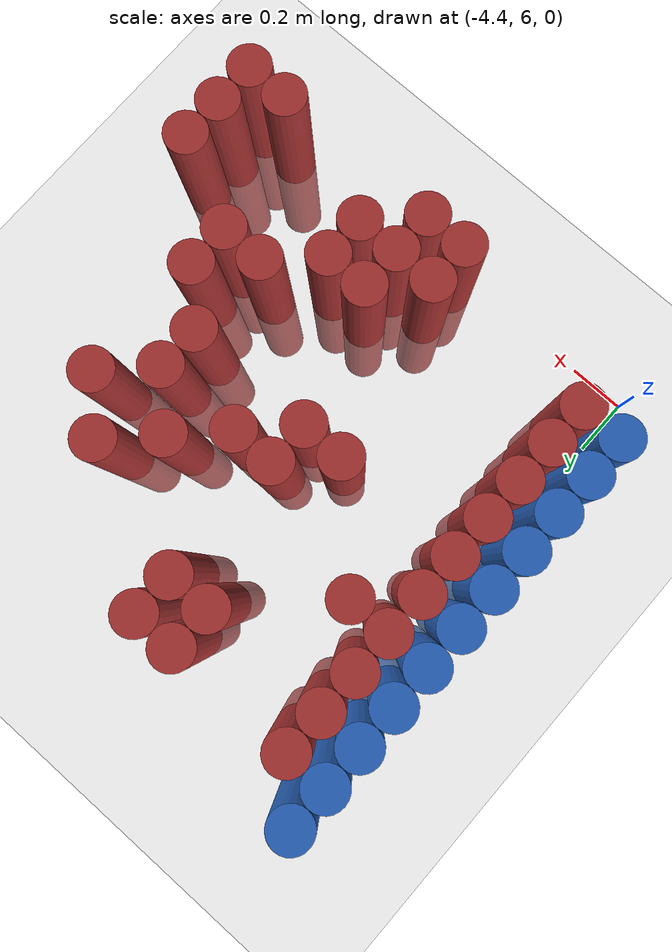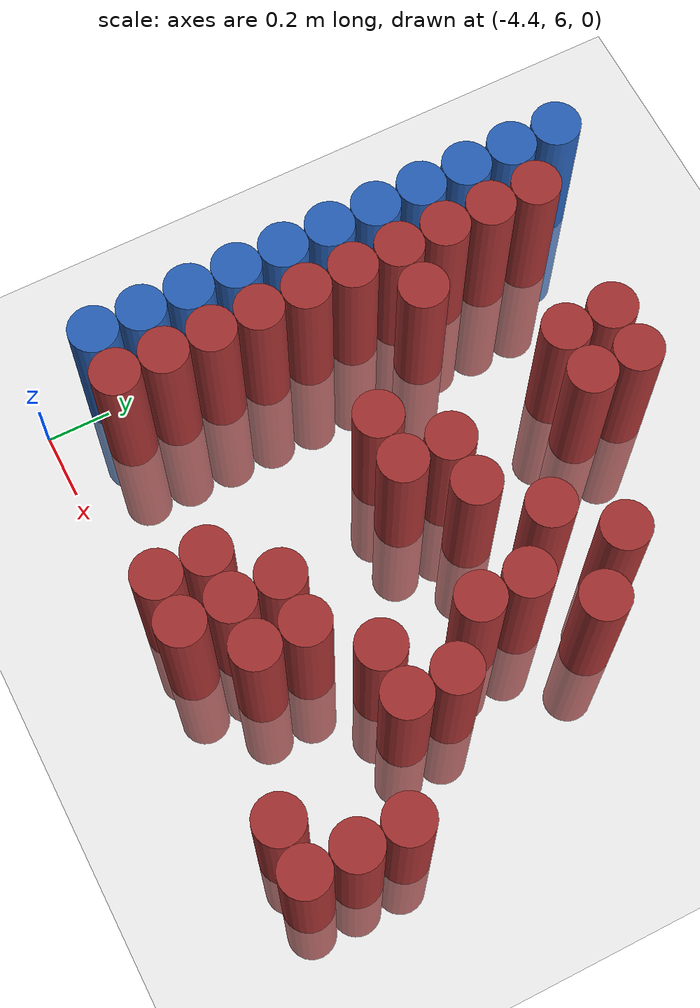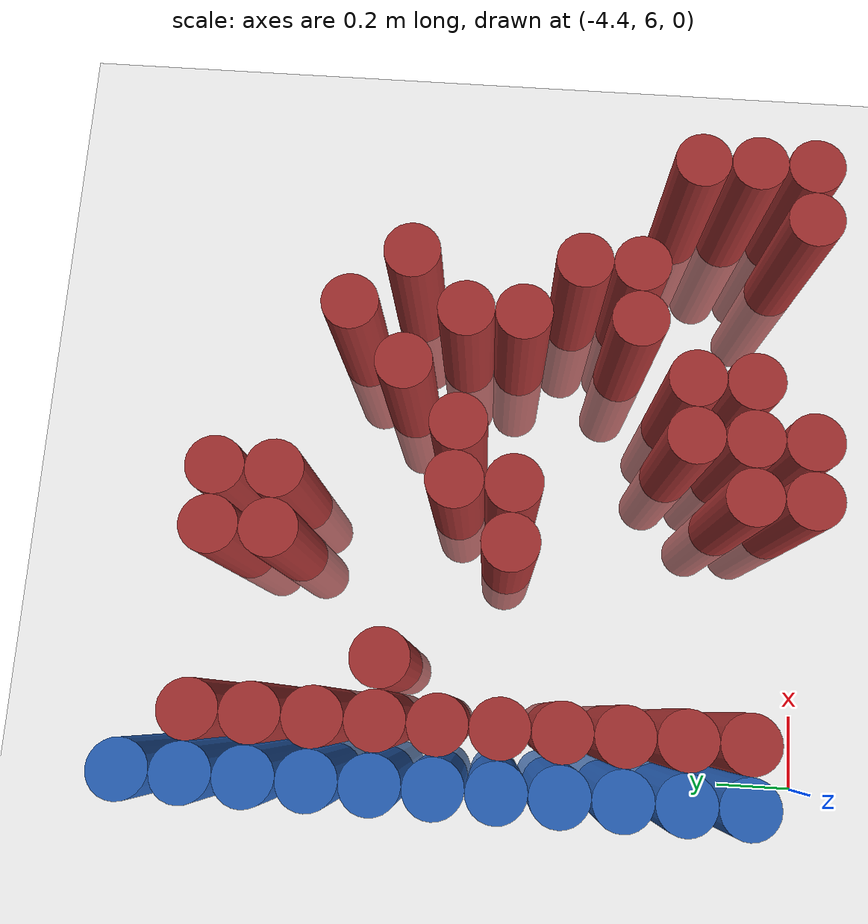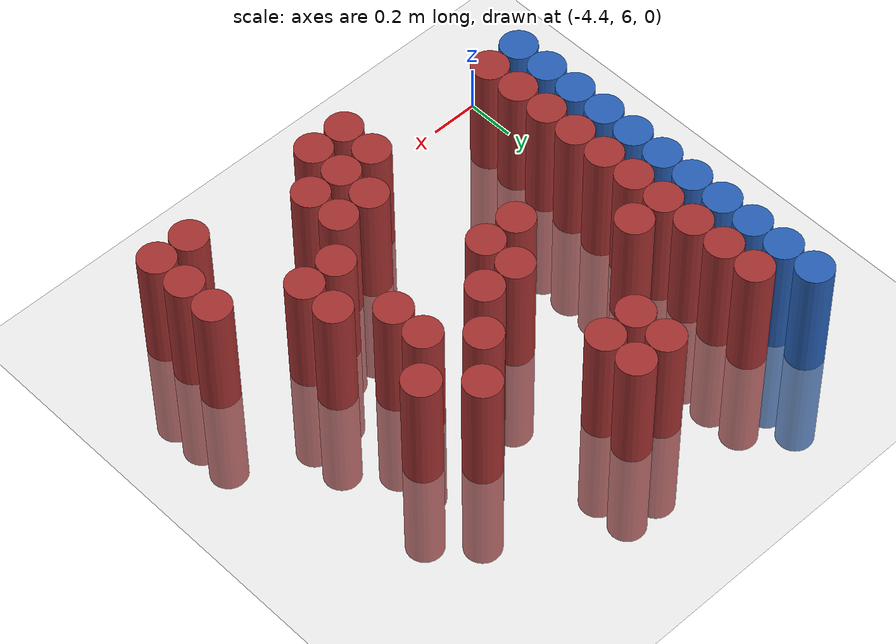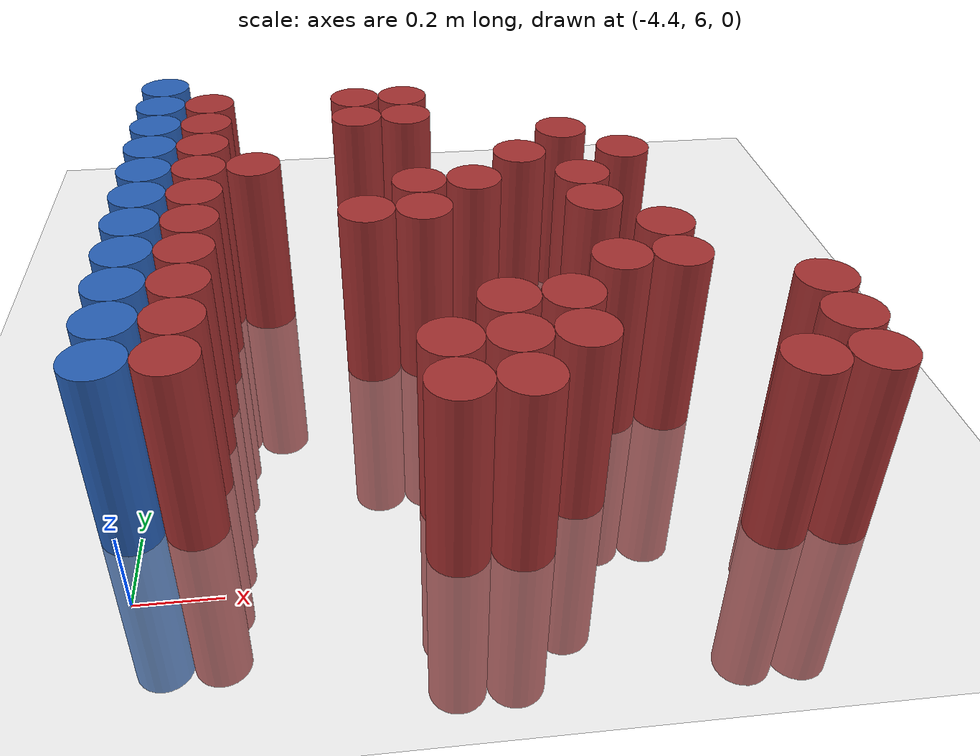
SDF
<sdf version="1.6">
 <world name="default">
  <model name="ground_plane">
   <static>1</static>
   <link name="link">
    <collision name="collision">
     <geometry><plane><normal>0 0 1</normal><size>100 100</size></plane></geometry>
     <surface><friction><ode><mu>100</mu><mu2>50</mu2></ode></friction></surface>
    </collision>
    <visual name="visual">
     <cast_shadows>0</cast_shadows>
     <geometry><plane><normal>0 0 1</normal><size>100 100</size></plane></geometry>
     <material>
      <script><uri>file://media/materials/scripts/gazebo.material</uri><name>Gazebo/Grey</name></script>
     </material>
    </visual>
   </link>
  </model>
  <model name="unit_cylinder_103">
   <static>1</static>
   <pose>-4.425000 6.225000 0.000000 0.000000 0.000000 0.000000</pose>
   <link name="link">
    <inertial>
     <mass>1</mass>
     <inertia><ixx>0.145833</ixx><ixy>0</ixy><ixz>0</ixz><iyy>0.145833</iyy><iyz>0</iyz><izz>0.125</izz></inertia>
    </inertial>
    <collision name="collision">
     <geometry><cylinder><radius>0.075000</radius><length>1</length></cylinder></geometry>
    </collision>
    <visual name="visual">
     <geometry><cylinder><radius>0.075000</radius><length>1</length></cylinder></geometry>
     <material>
      <ambient>0.152000 0.379000 0.720000 1</ambient>
      <diffuse>0.152000 0.379000 0.720000 1</diffuse>
     </material>
     <material>
      <script><name>Gazebo/Grey</name><uri>file://media/materials/scripts/gazebo.material</uri></script>
     </material>
    </visual>
   </link>
  </model>
  <model name="unit_cylinder_104">
   <static>1</static>
   <pose>-4.425000 6.375000 0.000000 0.000000 0.000000 0.000000</pose>
   <link name="link">
    <inertial>
     <mass>1</mass>
     <inertia><ixx>0.145833</ixx><ixy>0</ixy><ixz>0</ixz><iyy>0.145833</iyy><iyz>0</iyz><izz>0.125</izz></inertia>
    </inertial>
    <collision name="collision">
     <geometry><cylinder><radius>0.075000</radius><length>1</length></cylinder></geometry>
    </collision>
    <visual name="visual">
     <geometry><cylinder><radius>0.075000</radius><length>1</length></cylinder></geometry>
     <material>
      <ambient>0.152000 0.379000 0.720000 1</ambient>
      <diffuse>0.152000 0.379000 0.720000 1</diffuse>
     </material>
     <material>
      <script><name>Gazebo/Grey</name><uri>file://media/materials/scripts/gazebo.material</uri></script>
     </material>
    </visual>
   </link>
  </model>
  <model name="unit_cylinder_105">
   <static>1</static>
   <pose>-4.425000 6.525000 0.000000 0.000000 0.000000 0.000000</pose>
   <link name="link">
    <inertial>
     <mass>1</mass>
     <inertia><ixx>0.145833</ixx><ixy>0</ixy><ixz>0</ixz><iyy>0.145833</iyy><iyz>0</iyz><izz>0.125</izz></inertia>
    </inertial>
    <collision name="collision">
     <geometry><cylinder><radius>0.075000</radius><length>1</length></cylinder></geometry>
    </collision>
    <visual name="visual">
     <geometry><cylinder><radius>0.075000</radius><length>1</length></cylinder></geometry>
     <material>
      <ambient>0.152000 0.379000 0.720000 1</ambient>
      <diffuse>0.152000 0.379000 0.720000 1</diffuse>
     </material>
     <material>
      <script><name>Gazebo/Grey</name><uri>file://media/materials/scripts/gazebo.material</uri></script>
     </material>
    </visual>
   </link>
  </model>
  <model name="unit_cylinder_106">
   <static>1</static>
   <pose>-4.425000 6.675000 0.000000 0.000000 0.000000 0.000000</pose>
   <link name="link">
    <inertial>
     <mass>1</mass>
     <inertia><ixx>0.145833</ixx><ixy>0</ixy><ixz>0</ixz><iyy>0.145833</iyy><iyz>0</iyz><izz>0.125</izz></inertia>
    </inertial>
    <collision name="collision">
     <geometry><cylinder><radius>0.075000</radius><length>1</length></cylinder></geometry>
    </collision>
    <visual name="visual">
     <geometry><cylinder><radius>0.075000</radius><length>1</length></cylinder></geometry>
     <material>
      <ambient>0.152000 0.379000 0.720000 1</ambient>
      <diffuse>0.152000 0.379000 0.720000 1</diffuse>
     </material>
     <material>
      <script><name>Gazebo/Grey</name><uri>file://media/materials/scripts/gazebo.material</uri></script>
     </material>
    </visual>
   </link>
  </model>
  <model name="unit_cylinder_107">
   <static>1</static>
   <pose>-4.425000 6.825000 0.000000 0.000000 0.000000 0.000000</pose>
   <link name="link">
    <inertial>
     <mass>1</mass>
     <inertia><ixx>0.145833</ixx><ixy>0</ixy><ixz>0</ixz><iyy>0.145833</iyy><iyz>0</iyz><izz>0.125</izz></inertia>
    </inertial>
    <collision name="collision">
     <geometry><cylinder><radius>0.075000</radius><length>1</length></cylinder></geometry>
    </collision>
    <visual name="visual">
     <geometry><cylinder><radius>0.075000</radius><length>1</length></cylinder></geometry>
     <material>
      <ambient>0.152000 0.379000 0.720000 1</ambient>
      <diffuse>0.152000 0.379000 0.720000 1</diffuse>
     </material>
     <material>
      <script><name>Gazebo/Grey</name><uri>file://media/materials/scripts/gazebo.material</uri></script>
     </material>
    </visual>
   </link>
  </model>
  <model name="unit_cylinder_108">
   <static>1</static>
   <pose>-4.425000 6.975000 0.000000 0.000000 0.000000 0.000000</pose>
   <link name="link">
    <inertial>
     <mass>1</mass>
     <inertia><ixx>0.145833</ixx><ixy>0</ixy><ixz>0</ixz><iyy>0.145833</iyy><iyz>0</iyz><izz>0.125</izz></inertia>
    </inertial>
    <collision name="collision">
     <geometry><cylinder><radius>0.075000</radius><length>1</length></cylinder></geometry>
    </collision>
    <visual name="visual">
     <geometry><cylinder><radius>0.075000</radius><length>1</length></cylinder></geometry>
     <material>
      <ambient>0.152000 0.379000 0.720000 1</ambient>
      <diffuse>0.152000 0.379000 0.720000 1</diffuse>
     </material>
     <material>
      <script><name>Gazebo/Grey</name><uri>file://media/materials/scripts/gazebo.material</uri></script>
     </material>
    </visual>
   </link>
  </model>
  <model name="unit_cylinder_109">
   <static>1</static>
   <pose>-4.425000 7.125000 0.000000 0.000000 0.000000 0.000000</pose>
   <link name="link">
    <inertial>
     <mass>1</mass>
     <inertia><ixx>0.145833</ixx><ixy>0</ixy><ixz>0</ixz><iyy>0.145833</iyy><iyz>0</iyz><izz>0.125</izz></inertia>
    </inertial>
    <collision name="collision">
     <geometry><cylinder><radius>0.075000</radius><length>1</length></cylinder></geometry>
    </collision>
    <visual name="visual">
     <geometry><cylinder><radius>0.075000</radius><length>1</length></cylinder></geometry>
     <material>
      <ambient>0.152000 0.379000 0.720000 1</ambient>
      <diffuse>0.152000 0.379000 0.720000 1</diffuse>
     </material>
     <material>
      <script><name>Gazebo/Grey</name><uri>file://media/materials/scripts/gazebo.material</uri></script>
     </material>
    </visual>
   </link>
  </model>
  <model name="unit_cylinder_110">
   <static>1</static>
   <pose>-4.425000 7.275000 0.000000 0.000000 0.000000 0.000000</pose>
   <link name="link">
    <inertial>
     <mass>1</mass>
     <inertia><ixx>0.145833</ixx><ixy>0</ixy><ixz>0</ixz><iyy>0.145833</iyy><iyz>0</iyz><izz>0.125</izz></inertia>
    </inertial>
    <collision name="collision">
     <geometry><cylinder><radius>0.075000</radius><length>1</length></cylinder></geometry>
    </collision>
    <visual name="visual">
     <geometry><cylinder><radius>0.075000</radius><length>1</length></cylinder></geometry>
     <material>
      <ambient>0.152000 0.379000 0.720000 1</ambient>
      <diffuse>0.152000 0.379000 0.720000 1</diffuse>
     </material>
     <material>
      <script><name>Gazebo/Grey</name><uri>file://media/materials/scripts/gazebo.material</uri></script>
     </material>
    </visual>
   </link>
  </model>
  <model name="unit_cylinder_111">
   <static>1</static>
   <pose>-4.425000 7.425000 0.000000 0.000000 0.000000 0.000000</pose>
   <link name="link">
    <inertial>
     <mass>1</mass>
     <inertia><ixx>0.145833</ixx><ixy>0</ixy><ixz>0</ixz><iyy>0.145833</iyy><iyz>0</iyz><izz>0.125</izz></inertia>
    </inertial>
    <collision name="collision">
     <geometry><cylinder><radius>0.075000</radius><length>1</length></cylinder></geometry>
    </collision>
    <visual name="visual">
     <geometry><cylinder><radius>0.075000</radius><length>1</length></cylinder></geometry>
     <material>
      <ambient>0.152000 0.379000 0.720000 1</ambient>
      <diffuse>0.152000 0.379000 0.720000 1</diffuse>
     </material>
     <material>
      <script><name>Gazebo/Grey</name><uri>file://media/materials/scripts/gazebo.material</uri></script>
     </material>
    </visual>
   </link>
  </model>
  <model name="unit_cylinder_112">
   <static>1</static>
   <pose>-4.425000 7.575000 0.000000 0.000000 0.000000 0.000000</pose>
   <link name="link">
    <inertial>
     <mass>1</mass>
     <inertia><ixx>0.145833</ixx><ixy>0</ixy><ixz>0</ixz><iyy>0.145833</iyy><iyz>0</iyz><izz>0.125</izz></inertia>
    </inertial>
    <collision name="collision">
     <geometry><cylinder><radius>0.075000</radius><length>1</length></cylinder></geometry>
    </collision>
    <visual name="visual">
     <geometry><cylinder><radius>0.075000</radius><length>1</length></cylinder></geometry>
     <material>
      <ambient>0.152000 0.379000 0.720000 1</ambient>
      <diffuse>0.152000 0.379000 0.720000 1</diffuse>
     </material>
     <material>
      <script><name>Gazebo/Grey</name><uri>file://media/materials/scripts/gazebo.material</uri></script>
     </material>
    </visual>
   </link>
  </model>
  <model name="unit_cylinder_113">
   <static>1</static>
   <pose>-4.425000 7.725000 0.000000 0.000000 0.000000 0.000000</pose>
   <link name="link">
    <inertial>
     <mass>1</mass>
     <inertia><ixx>0.145833</ixx><ixy>0</ixy><ixz>0</ixz><iyy>0.145833</iyy><iyz>0</iyz><izz>0.125</izz></inertia>
    </inertial>
    <collision name="collision">
     <geometry><cylinder><radius>0.075000</radius><length>1</length></cylinder></geometry>
    </collision>
    <visual name="visual">
     <geometry><cylinder><radius>0.075000</radius><length>1</length></cylinder></geometry>
     <material>
      <ambient>0.152000 0.379000 0.720000 1</ambient>
      <diffuse>0.152000 0.379000 0.720000 1</diffuse>
     </material>
     <material>
      <script><name>Gazebo/Grey</name><uri>file://media/materials/scripts/gazebo.material</uri></script>
     </material>
    </visual>
   </link>
  </model>
  <model name="unit_cylinder_130">
   <static>1</static>
   <pose>-4.275000 6.225000 0.000000 0.000000 0.000000 0.000000</pose>
   <link name="link">
    <inertial>
     <mass>1</mass>
     <inertia><ixx>0.145833</ixx><ixy>0</ixy><ixz>0</ixz><iyy>0.145833</iyy><iyz>0</iyz><izz>0.125</izz></inertia>
    </inertial>
    <collision name="collision">
     <geometry><cylinder><radius>0.075000</radius><length>1</length></cylinder></geometry>
    </collision>
    <visual name="visual">
     <geometry><cylinder><radius>0.075000</radius><length>1</length></cylinder></geometry>
     <material>
      <ambient>0.648000 0.192000 0.192000 1</ambient>
      <diffuse>0.648000 0.192000 0.192000 1</diffuse>
     </material>
     <material>
      <script><name>Gazebo/Grey</name><uri>file://media/materials/scripts/gazebo.material</uri></script>
     </material>
    </visual>
   </link>
  </model>
  <model name="unit_cylinder_131">
   <static>1</static>
   <pose>-4.275000 6.375000 0.000000 0.000000 0.000000 0.000000</pose>
   <link name="link">
    <inertial>
     <mass>1</mass>
     <inertia><ixx>0.145833</ixx><ixy>0</ixy><ixz>0</ixz><iyy>0.145833</iyy><iyz>0</iyz><izz>0.125</izz></inertia>
    </inertial>
    <collision name="collision">
     <geometry><cylinder><radius>0.075000</radius><length>1</length></cylinder></geometry>
    </collision>
    <visual name="visual">
     <geometry><cylinder><radius>0.075000</radius><length>1</length></cylinder></geometry>
     <material>
      <ambient>0.648000 0.192000 0.192000 1</ambient>
      <diffuse>0.648000 0.192000 0.192000 1</diffuse>
     </material>
     <material>
      <script><name>Gazebo/Grey</name><uri>file://media/materials/scripts/gazebo.material</uri></script>
     </material>
    </visual>
   </link>
  </model>
  <model name="unit_cylinder_132">
   <static>1</static>
   <pose>-4.275000 6.525000 0.000000 0.000000 0.000000 0.000000</pose>
   <link name="link">
    <inertial>
     <mass>1</mass>
     <inertia><ixx>0.145833</ixx><ixy>0</ixy><ixz>0</ixz><iyy>0.145833</iyy><iyz>0</iyz><izz>0.125</izz></inertia>
    </inertial>
    <collision name="collision">
     <geometry><cylinder><radius>0.075000</radius><length>1</length></cylinder></geometry>
    </collision>
    <visual name="visual">
     <geometry><cylinder><radius>0.075000</radius><length>1</length></cylinder></geometry>
     <material>
      <ambient>0.648000 0.192000 0.192000 1</ambient>
      <diffuse>0.648000 0.192000 0.192000 1</diffuse>
     </material>
     <material>
      <script><name>Gazebo/Grey</name><uri>file://media/materials/scripts/gazebo.material</uri></script>
     </material>
    </visual>
   </link>
  </model>
  <model name="unit_cylinder_133">
   <static>1</static>
   <pose>-4.275000 6.675000 0.000000 0.000000 0.000000 0.000000</pose>
   <link name="link">
    <inertial>
     <mass>1</mass>
     <inertia><ixx>0.145833</ixx><ixy>0</ixy><ixz>0</ixz><iyy>0.145833</iyy><iyz>0</iyz><izz>0.125</izz></inertia>
    </inertial>
    <collision name="collision">
     <geometry><cylinder><radius>0.075000</radius><length>1</length></cylinder></geometry>
    </collision>
    <visual name="visual">
     <geometry><cylinder><radius>0.075000</radius><length>1</length></cylinder></geometry>
     <material>
      <ambient>0.648000 0.192000 0.192000 1</ambient>
      <diffuse>0.648000 0.192000 0.192000 1</diffuse>
     </material>
     <material>
      <script><name>Gazebo/Grey</name><uri>file://media/materials/scripts/gazebo.material</uri></script>
     </material>
    </visual>
   </link>
  </model>
  <model name="unit_cylinder_134">
   <static>1</static>
   <pose>-4.275000 6.825000 0.000000 0.000000 0.000000 0.000000</pose>
   <link name="link">
    <inertial>
     <mass>1</mass>
     <inertia><ixx>0.145833</ixx><ixy>0</ixy><ixz>0</ixz><iyy>0.145833</iyy><iyz>0</iyz><izz>0.125</izz></inertia>
    </inertial>
    <collision name="collision">
     <geometry><cylinder><radius>0.075000</radius><length>1</length></cylinder></geometry>
    </collision>
    <visual name="visual">
     <geometry><cylinder><radius>0.075000</radius><length>1</length></cylinder></geometry>
     <material>
      <ambient>0.648000 0.192000 0.192000 1</ambient>
      <diffuse>0.648000 0.192000 0.192000 1</diffuse>
     </material>
     <material>
      <script><name>Gazebo/Grey</name><uri>file://media/materials/scripts/gazebo.material</uri></script>
     </material>
    </visual>
   </link>
  </model>
  <model name="unit_cylinder_135">
   <static>1</static>
   <pose>-4.275000 6.975000 0.000000 0.000000 0.000000 0.000000</pose>
   <link name="link">
    <inertial>
     <mass>1</mass>
     <inertia><ixx>0.145833</ixx><ixy>0</ixy><ixz>0</ixz><iyy>0.145833</iyy><iyz>0</iyz><izz>0.125</izz></inertia>
    </inertial>
    <collision name="collision">
     <geometry><cylinder><radius>0.075000</radius><length>1</length></cylinder></geometry>
    </collision>
    <visual name="visual">
     <geometry><cylinder><radius>0.075000</radius><length>1</length></cylinder></geometry>
     <material>
      <ambient>0.648000 0.192000 0.192000 1</ambient>
      <diffuse>0.648000 0.192000 0.192000 1</diffuse>
     </material>
     <material>
      <script><name>Gazebo/Grey</name><uri>file://media/materials/scripts/gazebo.material</uri></script>
     </material>
    </visual>
   </link>
  </model>
  <model name="unit_cylinder_136">
   <static>1</static>
   <pose>-4.275000 7.125000 0.000000 0.000000 0.000000 0.000000</pose>
   <link name="link">
    <inertial>
     <mass>1</mass>
     <inertia><ixx>0.145833</ixx><ixy>0</ixy><ixz>0</ixz><iyy>0.145833</iyy><iyz>0</iyz><izz>0.125</izz></inertia>
    </inertial>
    <collision name="collision">
     <geometry><cylinder><radius>0.075000</radius><length>1</length></cylinder></geometry>
    </collision>
    <visual name="visual">
     <geometry><cylinder><radius>0.075000</radius><length>1</length></cylinder></geometry>
     <material>
      <ambient>0.648000 0.192000 0.192000 1</ambient>
      <diffuse>0.648000 0.192000 0.192000 1</diffuse>
     </material>
     <material>
      <script><name>Gazebo/Grey</name><uri>file://media/materials/scripts/gazebo.material</uri></script>
     </material>
    </visual>
   </link>
  </model>
  <model name="unit_cylinder_137">
   <static>1</static>
   <pose>-4.275000 7.275000 0.000000 0.000000 0.000000 0.000000</pose>
   <link name="link">
    <inertial>
     <mass>1</mass>
     <inertia><ixx>0.145833</ixx><ixy>0</ixy><ixz>0</ixz><iyy>0.145833</iyy><iyz>0</iyz><izz>0.125</izz></inertia>
    </inertial>
    <collision name="collision">
     <geometry><cylinder><radius>0.075000</radius><length>1</length></cylinder></geometry>
    </collision>
    <visual name="visual">
     <geometry><cylinder><radius>0.075000</radius><length>1</length></cylinder></geometry>
     <material>
      <ambient>0.648000 0.192000 0.192000 1</ambient>
      <diffuse>0.648000 0.192000 0.192000 1</diffuse>
     </material>
     <material>
      <script><name>Gazebo/Grey</name><uri>file://media/materials/scripts/gazebo.material</uri></script>
     </material>
    </visual>
   </link>
  </model>
  <model name="unit_cylinder_138">
   <static>1</static>
   <pose>-4.275000 7.425000 0.000000 0.000000 0.000000 0.000000</pose>
   <link name="link">
    <inertial>
     <mass>1</mass>
     <inertia><ixx>0.145833</ixx><ixy>0</ixy><ixz>0</ixz><iyy>0.145833</iyy><iyz>0</iyz><izz>0.125</izz></inertia>
    </inertial>
    <collision name="collision">
     <geometry><cylinder><radius>0.075000</radius><length>1</length></cylinder></geometry>
    </collision>
    <visual name="visual">
     <geometry><cylinder><radius>0.075000</radius><length>1</length></cylinder></geometry>
     <material>
      <ambient>0.648000 0.192000 0.192000 1</ambient>
      <diffuse>0.648000 0.192000 0.192000 1</diffuse>
     </material>
     <material>
      <script><name>Gazebo/Grey</name><uri>file://media/materials/scripts/gazebo.material</uri></script>
     </material>
    </visual>
   </link>
  </model>
  <model name="unit_cylinder_139">
   <static>1</static>
   <pose>-4.275000 7.575000 0.000000 0.000000 0.000000 0.000000</pose>
   <link name="link">
    <inertial>
     <mass>1</mass>
     <inertia><ixx>0.145833</ixx><ixy>0</ixy><ixz>0</ixz><iyy>0.145833</iyy><iyz>0</iyz><izz>0.125</izz></inertia>
    </inertial>
    <collision name="collision">
     <geometry><cylinder><radius>0.075000</radius><length>1</length></cylinder></geometry>
    </collision>
    <visual name="visual">
     <geometry><cylinder><radius>0.075000</radius><length>1</length></cylinder></geometry>
     <material>
      <ambient>0.648000 0.192000 0.192000 1</ambient>
      <diffuse>0.648000 0.192000 0.192000 1</diffuse>
     </material>
     <material>
      <script><name>Gazebo/Grey</name><uri>file://media/materials/scripts/gazebo.material</uri></script>
     </material>
    </visual>
   </link>
  </model>
  <model name="unit_cylinder_152">
   <static>1</static>
   <pose>-4.125000 7.125000 0.000000 0.000000 0.000000 0.000000</pose>
   <link name="link">
    <inertial>
     <mass>1</mass>
     <inertia><ixx>0.145833</ixx><ixy>0</ixy><ixz>0</ixz><iyy>0.145833</iyy><iyz>0</iyz><izz>0.125</izz></inertia>
    </inertial>
    <collision name="collision">
     <geometry><cylinder><radius>0.075000</radius><length>1</length></cylinder></geometry>
    </collision>
    <visual name="visual">
     <geometry><cylinder><radius>0.075000</radius><length>1</length></cylinder></geometry>
     <material>
      <ambient>0.648000 0.192000 0.192000 1</ambient>
      <diffuse>0.648000 0.192000 0.192000 1</diffuse>
     </material>
     <material>
      <script><name>Gazebo/Grey</name><uri>file://media/materials/scripts/gazebo.material</uri></script>
     </material>
    </visual>
   </link>
  </model>
  <model name="unit_cylinder_161">
   <static>1</static>
   <pose>-3.825000 6.825000 0.000000 0.000000 0.000000 0.000000</pose>
   <link name="link">
    <inertial>
     <mass>1</mass>
     <inertia><ixx>0.145833</ixx><ixy>0</ixy><ixz>0</ixz><iyy>0.145833</iyy><iyz>0</iyz><izz>0.125</izz></inertia>
    </inertial>
    <collision name="collision">
     <geometry><cylinder><radius>0.075000</radius><length>1</length></cylinder></geometry>
    </collision>
    <visual name="visual">
     <geometry><cylinder><radius>0.075000</radius><length>1</length></cylinder></geometry>
     <material>
      <ambient>0.648000 0.192000 0.192000 1</ambient>
      <diffuse>0.648000 0.192000 0.192000 1</diffuse>
     </material>
     <material>
      <script><name>Gazebo/Grey</name><uri>file://media/materials/scripts/gazebo.material</uri></script>
     </material>
    </visual>
   </link>
  </model>
  <model name="unit_cylinder_162">
   <static>1</static>
   <pose>-3.825000 7.425000 0.000000 0.000000 0.000000 0.000000</pose>
   <link name="link">
    <inertial>
     <mass>1</mass>
     <inertia><ixx>0.145833</ixx><ixy>0</ixy><ixz>0</ixz><iyy>0.145833</iyy><iyz>0</iyz><izz>0.125</izz></inertia>
    </inertial>
    <collision name="collision">
     <geometry><cylinder><radius>0.075000</radius><length>1</length></cylinder></geometry>
    </collision>
    <visual name="visual">
     <geometry><cylinder><radius>0.075000</radius><length>1</length></cylinder></geometry>
     <material>
      <ambient>0.648000 0.192000 0.192000 1</ambient>
      <diffuse>0.648000 0.192000 0.192000 1</diffuse>
     </material>
     <material>
      <script><name>Gazebo/Grey</name><uri>file://media/materials/scripts/gazebo.material</uri></script>
     </material>
    </visual>
   </link>
  </model>
  <model name="unit_cylinder_163">
   <static>1</static>
   <pose>-3.825000 7.575000 0.000000 0.000000 0.000000 0.000000</pose>
   <link name="link">
    <inertial>
     <mass>1</mass>
     <inertia><ixx>0.145833</ixx><ixy>0</ixy><ixz>0</ixz><iyy>0.145833</iyy><iyz>0</iyz><izz>0.125</izz></inertia>
    </inertial>
    <collision name="collision">
     <geometry><cylinder><radius>0.075000</radius><length>1</length></cylinder></geometry>
    </collision>
    <visual name="visual">
     <geometry><cylinder><radius>0.075000</radius><length>1</length></cylinder></geometry>
     <material>
      <ambient>0.648000 0.192000 0.192000 1</ambient>
      <diffuse>0.648000 0.192000 0.192000 1</diffuse>
     </material>
     <material>
      <script><name>Gazebo/Grey</name><uri>file://media/materials/scripts/gazebo.material</uri></script>
     </material>
    </visual>
   </link>
  </model>
  <model name="unit_cylinder_172">
   <static>1</static>
   <pose>-3.675000 6.075000 0.000000 0.000000 0.000000 0.000000</pose>
   <link name="link">
    <inertial>
     <mass>1</mass>
     <inertia><ixx>0.145833</ixx><ixy>0</ixy><ixz>0</ixz><iyy>0.145833</iyy><iyz>0</iyz><izz>0.125</izz></inertia>
    </inertial>
    <collision name="collision">
     <geometry><cylinder><radius>0.075000</radius><length>1</length></cylinder></geometry>
    </collision>
    <visual name="visual">
     <geometry><cylinder><radius>0.075000</radius><length>1</length></cylinder></geometry>
     <material>
      <ambient>0.648000 0.192000 0.192000 1</ambient>
      <diffuse>0.648000 0.192000 0.192000 1</diffuse>
     </material>
     <material>
      <script><name>Gazebo/Grey</name><uri>file://media/materials/scripts/gazebo.material</uri></script>
     </material>
    </visual>
   </link>
  </model>
  <model name="unit_cylinder_173">
   <static>1</static>
   <pose>-3.675000 6.225000 0.000000 0.000000 0.000000 0.000000</pose>
   <link name="link">
    <inertial>
     <mass>1</mass>
     <inertia><ixx>0.145833</ixx><ixy>0</ixy><ixz>0</ixz><iyy>0.145833</iyy><iyz>0</iyz><izz>0.125</izz></inertia>
    </inertial>
    <collision name="collision">
     <geometry><cylinder><radius>0.075000</radius><length>1</length></cylinder></geometry>
    </collision>
    <visual name="visual">
     <geometry><cylinder><radius>0.075000</radius><length>1</length></cylinder></geometry>
     <material>
      <ambient>0.648000 0.192000 0.192000 1</ambient>
      <diffuse>0.648000 0.192000 0.192000 1</diffuse>
     </material>
     <material>
      <script><name>Gazebo/Grey</name><uri>file://media/materials/scripts/gazebo.material</uri></script>
     </material>
    </visual>
   </link>
  </model>
  <model name="unit_cylinder_174">
   <static>1</static>
   <pose>-3.675000 6.825000 0.000000 0.000000 0.000000 0.000000</pose>
   <link name="link">
    <inertial>
     <mass>1</mass>
     <inertia><ixx>0.145833</ixx><ixy>0</ixy><ixz>0</ixz><iyy>0.145833</iyy><iyz>0</iyz><izz>0.125</izz></inertia>
    </inertial>
    <collision name="collision">
     <geometry><cylinder><radius>0.075000</radius><length>1</length></cylinder></geometry>
    </collision>
    <visual name="visual">
     <geometry><cylinder><radius>0.075000</radius><length>1</length></cylinder></geometry>
     <material>
      <ambient>0.648000 0.192000 0.192000 1</ambient>
      <diffuse>0.648000 0.192000 0.192000 1</diffuse>
     </material>
     <material>
      <script><name>Gazebo/Grey</name><uri>file://media/materials/scripts/gazebo.material</uri></script>
     </material>
    </visual>
   </link>
  </model>
  <model name="unit_cylinder_175">
   <static>1</static>
   <pose>-3.675000 6.975000 0.000000 0.000000 0.000000 0.000000</pose>
   <link name="link">
    <inertial>
     <mass>1</mass>
     <inertia><ixx>0.145833</ixx><ixy>0</ixy><ixz>0</ixz><iyy>0.145833</iyy><iyz>0</iyz><izz>0.125</izz></inertia>
    </inertial>
    <collision name="collision">
     <geometry><cylinder><radius>0.075000</radius><length>1</length></cylinder></geometry>
    </collision>
    <visual name="visual">
     <geometry><cylinder><radius>0.075000</radius><length>1</length></cylinder></geometry>
     <material>
      <ambient>0.648000 0.192000 0.192000 1</ambient>
      <diffuse>0.648000 0.192000 0.192000 1</diffuse>
     </material>
     <material>
      <script><name>Gazebo/Grey</name><uri>file://media/materials/scripts/gazebo.material</uri></script>
     </material>
    </visual>
   </link>
  </model>
  <model name="unit_cylinder_176">
   <static>1</static>
   <pose>-3.675000 7.425000 0.000000 0.000000 0.000000 0.000000</pose>
   <link name="link">
    <inertial>
     <mass>1</mass>
     <inertia><ixx>0.145833</ixx><ixy>0</ixy><ixz>0</ixz><iyy>0.145833</iyy><iyz>0</iyz><izz>0.125</izz></inertia>
    </inertial>
    <collision name="collision">
     <geometry><cylinder><radius>0.075000</radius><length>1</length></cylinder></geometry>
    </collision>
    <visual name="visual">
     <geometry><cylinder><radius>0.075000</radius><length>1</length></cylinder></geometry>
     <material>
      <ambient>0.648000 0.192000 0.192000 1</ambient>
      <diffuse>0.648000 0.192000 0.192000 1</diffuse>
     </material>
     <material>
      <script><name>Gazebo/Grey</name><uri>file://media/materials/scripts/gazebo.material</uri></script>
     </material>
    </visual>
   </link>
  </model>
  <model name="unit_cylinder_177">
   <static>1</static>
   <pose>-3.675000 7.575000 0.000000 0.000000 0.000000 0.000000</pose>
   <link name="link">
    <inertial>
     <mass>1</mass>
     <inertia><ixx>0.145833</ixx><ixy>0</ixy><ixz>0</ixz><iyy>0.145833</iyy><iyz>0</iyz><izz>0.125</izz></inertia>
    </inertial>
    <collision name="collision">
     <geometry><cylinder><radius>0.075000</radius><length>1</length></cylinder></geometry>
    </collision>
    <visual name="visual">
     <geometry><cylinder><radius>0.075000</radius><length>1</length></cylinder></geometry>
     <material>
      <ambient>0.648000 0.192000 0.192000 1</ambient>
      <diffuse>0.648000 0.192000 0.192000 1</diffuse>
     </material>
     <material>
      <script><name>Gazebo/Grey</name><uri>file://media/materials/scripts/gazebo.material</uri></script>
     </material>
    </visual>
   </link>
  </model>
  <model name="unit_cylinder_186">
   <static>1</static>
   <pose>-3.525000 6.075000 0.000000 0.000000 0.000000 0.000000</pose>
   <link name="link">
    <inertial>
     <mass>1</mass>
     <inertia><ixx>0.145833</ixx><ixy>0</ixy><ixz>0</ixz><iyy>0.145833</iyy><iyz>0</iyz><izz>0.125</izz></inertia>
    </inertial>
    <collision name="collision">
     <geometry><cylinder><radius>0.075000</radius><length>1</length></cylinder></geometry>
    </collision>
    <visual name="visual">
     <geometry><cylinder><radius>0.075000</radius><length>1</length></cylinder></geometry>
     <material>
      <ambient>0.648000 0.192000 0.192000 1</ambient>
      <diffuse>0.648000 0.192000 0.192000 1</diffuse>
     </material>
     <material>
      <script><name>Gazebo/Grey</name><uri>file://media/materials/scripts/gazebo.material</uri></script>
     </material>
    </visual>
   </link>
  </model>
  <model name="unit_cylinder_187">
   <static>1</static>
   <pose>-3.525000 6.225000 0.000000 0.000000 0.000000 0.000000</pose>
   <link name="link">
    <inertial>
     <mass>1</mass>
     <inertia><ixx>0.145833</ixx><ixy>0</ixy><ixz>0</ixz><iyy>0.145833</iyy><iyz>0</iyz><izz>0.125</izz></inertia>
    </inertial>
    <collision name="collision">
     <geometry><cylinder><radius>0.075000</radius><length>1</length></cylinder></geometry>
    </collision>
    <visual name="visual">
     <geometry><cylinder><radius>0.075000</radius><length>1</length></cylinder></geometry>
     <material>
      <ambient>0.648000 0.192000 0.192000 1</ambient>
      <diffuse>0.648000 0.192000 0.192000 1</diffuse>
     </material>
     <material>
      <script><name>Gazebo/Grey</name><uri>file://media/materials/scripts/gazebo.material</uri></script>
     </material>
    </visual>
   </link>
  </model>
  <model name="unit_cylinder_188">
   <static>1</static>
   <pose>-3.525000 6.375000 0.000000 0.000000 0.000000 0.000000</pose>
   <link name="link">
    <inertial>
     <mass>1</mass>
     <inertia><ixx>0.145833</ixx><ixy>0</ixy><ixz>0</ixz><iyy>0.145833</iyy><iyz>0</iyz><izz>0.125</izz></inertia>
    </inertial>
    <collision name="collision">
     <geometry><cylinder><radius>0.075000</radius><length>1</length></cylinder></geometry>
    </collision>
    <visual name="visual">
     <geometry><cylinder><radius>0.075000</radius><length>1</length></cylinder></geometry>
     <material>
      <ambient>0.648000 0.192000 0.192000 1</ambient>
      <diffuse>0.648000 0.192000 0.192000 1</diffuse>
     </material>
     <material>
      <script><name>Gazebo/Grey</name><uri>file://media/materials/scripts/gazebo.material</uri></script>
     </material>
    </visual>
   </link>
  </model>
  <model name="unit_cylinder_189">
   <static>1</static>
   <pose>-3.525000 6.975000 0.000000 0.000000 0.000000 0.000000</pose>
   <link name="link">
    <inertial>
     <mass>1</mass>
     <inertia><ixx>0.145833</ixx><ixy>0</ixy><ixz>0</ixz><iyy>0.145833</iyy><iyz>0</iyz><izz>0.125</izz></inertia>
    </inertial>
    <collision name="collision">
     <geometry><cylinder><radius>0.075000</radius><length>1</length></cylinder></geometry>
    </collision>
    <visual name="visual">
     <geometry><cylinder><radius>0.075000</radius><length>1</length></cylinder></geometry>
     <material>
      <ambient>0.648000 0.192000 0.192000 1</ambient>
      <diffuse>0.648000 0.192000 0.192000 1</diffuse>
     </material>
     <material>
      <script><name>Gazebo/Grey</name><uri>file://media/materials/scripts/gazebo.material</uri></script>
     </material>
    </visual>
   </link>
  </model>
  <model name="unit_cylinder_197">
   <static>1</static>
   <pose>-3.375000 6.225000 0.000000 0.000000 0.000000 0.000000</pose>
   <link name="link">
    <inertial>
     <mass>1</mass>
     <inertia><ixx>0.145833</ixx><ixy>0</ixy><ixz>0</ixz><iyy>0.145833</iyy><iyz>0</iyz><izz>0.125</izz></inertia>
    </inertial>
    <collision name="collision">
     <geometry><cylinder><radius>0.075000</radius><length>1</length></cylinder></geometry>
    </collision>
    <visual name="visual">
     <geometry><cylinder><radius>0.075000</radius><length>1</length></cylinder></geometry>
     <material>
      <ambient>0.648000 0.192000 0.192000 1</ambient>
      <diffuse>0.648000 0.192000 0.192000 1</diffuse>
     </material>
     <material>
      <script><name>Gazebo/Grey</name><uri>file://media/materials/scripts/gazebo.material</uri></script>
     </material>
    </visual>
   </link>
  </model>
  <model name="unit_cylinder_198">
   <static>1</static>
   <pose>-3.375000 6.375000 0.000000 0.000000 0.000000 0.000000</pose>
   <link name="link">
    <inertial>
     <mass>1</mass>
     <inertia><ixx>0.145833</ixx><ixy>0</ixy><ixz>0</ixz><iyy>0.145833</iyy><iyz>0</iyz><izz>0.125</izz></inertia>
    </inertial>
    <collision name="collision">
     <geometry><cylinder><radius>0.075000</radius><length>1</length></cylinder></geometry>
    </collision>
    <visual name="visual">
     <geometry><cylinder><radius>0.075000</radius><length>1</length></cylinder></geometry>
     <material>
      <ambient>0.648000 0.192000 0.192000 1</ambient>
      <diffuse>0.648000 0.192000 0.192000 1</diffuse>
     </material>
     <material>
      <script><name>Gazebo/Grey</name><uri>file://media/materials/scripts/gazebo.material</uri></script>
     </material>
    </visual>
   </link>
  </model>
  <model name="unit_cylinder_199">
   <static>1</static>
   <pose>-3.375000 7.125000 0.000000 0.000000 0.000000 0.000000</pose>
   <link name="link">
    <inertial>
     <mass>1</mass>
     <inertia><ixx>0.145833</ixx><ixy>0</ixy><ixz>0</ixz><iyy>0.145833</iyy><iyz>0</iyz><izz>0.125</izz></inertia>
    </inertial>
    <collision name="collision">
     <geometry><cylinder><radius>0.075000</radius><length>1</length></cylinder></geometry>
    </collision>
    <visual name="visual">
     <geometry><cylinder><radius>0.075000</radius><length>1</length></cylinder></geometry>
     <material>
      <ambient>0.648000 0.192000 0.192000 1</ambient>
      <diffuse>0.648000 0.192000 0.192000 1</diffuse>
     </material>
     <material>
      <script><name>Gazebo/Grey</name><uri>file://media/materials/scripts/gazebo.material</uri></script>
     </material>
    </visual>
   </link>
  </model>
  <model name="unit_cylinder_205">
   <static>1</static>
   <pose>-3.225000 6.525000 0.000000 0.000000 0.000000 0.000000</pose>
   <link name="link">
    <inertial>
     <mass>1</mass>
     <inertia><ixx>0.145833</ixx><ixy>0</ixy><ixz>0</ixz><iyy>0.145833</iyy><iyz>0</iyz><izz>0.125</izz></inertia>
    </inertial>
    <collision name="collision">
     <geometry><cylinder><radius>0.075000</radius><length>1</length></cylinder></geometry>
    </collision>
    <visual name="visual">
     <geometry><cylinder><radius>0.075000</radius><length>1</length></cylinder></geometry>
     <material>
      <ambient>0.648000 0.192000 0.192000 1</ambient>
      <diffuse>0.648000 0.192000 0.192000 1</diffuse>
     </material>
     <material>
      <script><name>Gazebo/Grey</name><uri>file://media/materials/scripts/gazebo.material</uri></script>
     </material>
    </visual>
   </link>
  </model>
  <model name="unit_cylinder_206">
   <static>1</static>
   <pose>-3.225000 6.825000 0.000000 0.000000 0.000000 0.000000</pose>
   <link name="link">
    <inertial>
     <mass>1</mass>
     <inertia><ixx>0.145833</ixx><ixy>0</ixy><ixz>0</ixz><iyy>0.145833</iyy><iyz>0</iyz><izz>0.125</izz></inertia>
    </inertial>
    <collision name="collision">
     <geometry><cylinder><radius>0.075000</radius><length>1</length></cylinder></geometry>
    </collision>
    <visual name="visual">
     <geometry><cylinder><radius>0.075000</radius><length>1</length></cylinder></geometry>
     <material>
      <ambient>0.648000 0.192000 0.192000 1</ambient>
      <diffuse>0.648000 0.192000 0.192000 1</diffuse>
     </material>
     <material>
      <script><name>Gazebo/Grey</name><uri>file://media/materials/scripts/gazebo.material</uri></script>
     </material>
    </visual>
   </link>
  </model>
  <model name="unit_cylinder_207">
   <static>1</static>
   <pose>-3.225000 6.975000 0.000000 0.000000 0.000000 0.000000</pose>
   <link name="link">
    <inertial>
     <mass>1</mass>
     <inertia><ixx>0.145833</ixx><ixy>0</ixy><ixz>0</ixz><iyy>0.145833</iyy><iyz>0</iyz><izz>0.125</izz></inertia>
    </inertial>
    <collision name="collision">
     <geometry><cylinder><radius>0.075000</radius><length>1</length></cylinder></geometry>
    </collision>
    <visual name="visual">
     <geometry><cylinder><radius>0.075000</radius><length>1</length></cylinder></geometry>
     <material>
      <ambient>0.648000 0.192000 0.192000 1</ambient>
      <diffuse>0.648000 0.192000 0.192000 1</diffuse>
     </material>
     <material>
      <script><name>Gazebo/Grey</name><uri>file://media/materials/scripts/gazebo.material</uri></script>
     </material>
    </visual>
   </link>
  </model>
  <model name="unit_cylinder_208">
   <static>1</static>
   <pose>-3.225000 7.275000 0.000000 0.000000 0.000000 0.000000</pose>
   <link name="link">
    <inertial>
     <mass>1</mass>
     <inertia><ixx>0.145833</ixx><ixy>0</ixy><ixz>0</ixz><iyy>0.145833</iyy><iyz>0</iyz><izz>0.125</izz></inertia>
    </inertial>
    <collision name="collision">
     <geometry><cylinder><radius>0.075000</radius><length>1</length></cylinder></geometry>
    </collision>
    <visual name="visual">
     <geometry><cylinder><radius>0.075000</radius><length>1</length></cylinder></geometry>
     <material>
      <ambient>0.648000 0.192000 0.192000 1</ambient>
      <diffuse>0.648000 0.192000 0.192000 1</diffuse>
     </material>
     <material>
      <script><name>Gazebo/Grey</name><uri>file://media/materials/scripts/gazebo.material</uri></script>
     </material>
    </visual>
   </link>
  </model>
  <model name="unit_cylinder_214">
   <static>1</static>
   <pose>-3.075000 6.525000 0.000000 0.000000 0.000000 0.000000</pose>
   <link name="link">
    <inertial>
     <mass>1</mass>
     <inertia><ixx>0.145833</ixx><ixy>0</ixy><ixz>0</ixz><iyy>0.145833</iyy><iyz>0</iyz><izz>0.125</izz></inertia>
    </inertial>
    <collision name="collision">
     <geometry><cylinder><radius>0.075000</radius><length>1</length></cylinder></geometry>
    </collision>
    <visual name="visual">
     <geometry><cylinder><radius>0.075000</radius><length>1</length></cylinder></geometry>
     <material>
      <ambient>0.648000 0.192000 0.192000 1</ambient>
      <diffuse>0.648000 0.192000 0.192000 1</diffuse>
     </material>
     <material>
      <script><name>Gazebo/Grey</name><uri>file://media/materials/scripts/gazebo.material</uri></script>
     </material>
    </visual>
   </link>
  </model>
  <model name="unit_cylinder_215">
   <static>1</static>
   <pose>-3.075000 6.675000 0.000000 0.000000 0.000000 0.000000</pose>
   <link name="link">
    <inertial>
     <mass>1</mass>
     <inertia><ixx>0.145833</ixx><ixy>0</ixy><ixz>0</ixz><iyy>0.145833</iyy><iyz>0</iyz><izz>0.125</izz></inertia>
    </inertial>
    <collision name="collision">
     <geometry><cylinder><radius>0.075000</radius><length>1</length></cylinder></geometry>
    </collision>
    <visual name="visual">
     <geometry><cylinder><radius>0.075000</radius><length>1</length></cylinder></geometry>
     <material>
      <ambient>0.648000 0.192000 0.192000 1</ambient>
      <diffuse>0.648000 0.192000 0.192000 1</diffuse>
     </material>
     <material>
      <script><name>Gazebo/Grey</name><uri>file://media/materials/scripts/gazebo.material</uri></script>
     </material>
    </visual>
   </link>
  </model>
  <model name="unit_cylinder_216">
   <static>1</static>
   <pose>-3.075000 7.125000 0.000000 0.000000 0.000000 0.000000</pose>
   <link name="link">
    <inertial>
     <mass>1</mass>
     <inertia><ixx>0.145833</ixx><ixy>0</ixy><ixz>0</ixz><iyy>0.145833</iyy><iyz>0</iyz><izz>0.125</izz></inertia>
    </inertial>
    <collision name="collision">
     <geometry><cylinder><radius>0.075000</radius><length>1</length></cylinder></geometry>
    </collision>
    <visual name="visual">
     <geometry><cylinder><radius>0.075000</radius><length>1</length></cylinder></geometry>
     <material>
      <ambient>0.648000 0.192000 0.192000 1</ambient>
      <diffuse>0.648000 0.192000 0.192000 1</diffuse>
     </material>
     <material>
      <script><name>Gazebo/Grey</name><uri>file://media/materials/scripts/gazebo.material</uri></script>
     </material>
    </visual>
   </link>
  </model>
  <model name="unit_cylinder_219">
   <static>1</static>
   <pose>-2.925000 6.075000 0.000000 0.000000 0.000000 0.000000</pose>
   <link name="link">
    <inertial>
     <mass>1</mass>
     <inertia><ixx>0.145833</ixx><ixy>0</ixy><ixz>0</ixz><iyy>0.145833</iyy><iyz>0</iyz><izz>0.125</izz></inertia>
    </inertial>
    <collision name="collision">
     <geometry><cylinder><radius>0.075000</radius><length>1</length></cylinder></geometry>
    </collision>
    <visual name="visual">
     <geometry><cylinder><radius>0.075000</radius><length>1</length></cylinder></geometry>
     <material>
      <ambient>0.648000 0.192000 0.192000 1</ambient>
      <diffuse>0.648000 0.192000 0.192000 1</diffuse>
     </material>
     <material>
      <script><name>Gazebo/Grey</name><uri>file://media/materials/scripts/gazebo.material</uri></script>
     </material>
    </visual>
   </link>
  </model>
  <model name="unit_cylinder_220">
   <static>1</static>
   <pose>-2.775000 6.075000 0.000000 0.000000 0.000000 0.000000</pose>
   <link name="link">
    <inertial>
     <mass>1</mass>
     <inertia><ixx>0.145833</ixx><ixy>0</ixy><ixz>0</ixz><iyy>0.145833</iyy><iyz>0</iyz><izz>0.125</izz></inertia>
    </inertial>
    <collision name="collision">
     <geometry><cylinder><radius>0.075000</radius><length>1</length></cylinder></geometry>
    </collision>
    <visual name="visual">
     <geometry><cylinder><radius>0.075000</radius><length>1</length></cylinder></geometry>
     <material>
      <ambient>0.648000 0.192000 0.192000 1</ambient>
      <diffuse>0.648000 0.192000 0.192000 1</diffuse>
     </material>
     <material>
      <script><name>Gazebo/Grey</name><uri>file://media/materials/scripts/gazebo.material</uri></script>
     </material>
    </visual>
   </link>
  </model>
  <model name="unit_cylinder_221">
   <static>1</static>
   <pose>-2.775000 6.225000 0.000000 0.000000 0.000000 0.000000</pose>
   <link name="link">
    <inertial>
     <mass>1</mass>
     <inertia><ixx>0.145833</ixx><ixy>0</ixy><ixz>0</ixz><iyy>0.145833</iyy><iyz>0</iyz><izz>0.125</izz></inertia>
    </inertial>
    <collision name="collision">
     <geometry><cylinder><radius>0.075000</radius><length>1</length></cylinder></geometry>
    </collision>
    <visual name="visual">
     <geometry><cylinder><radius>0.075000</radius><length>1</length></cylinder></geometry>
     <material>
      <ambient>0.648000 0.192000 0.192000 1</ambient>
      <diffuse>0.648000 0.192000 0.192000 1</diffuse>
     </material>
     <material>
      <script><name>Gazebo/Grey</name><uri>file://media/materials/scripts/gazebo.material</uri></script>
     </material>
    </visual>
   </link>
  </model>
  <model name="unit_cylinder_222">
   <static>1</static>
   <pose>-2.775000 6.375000 0.000000 0.000000 0.000000 0.000000</pose>
   <link name="link">
    <inertial>
     <mass>1</mass>
     <inertia><ixx>0.145833</ixx><ixy>0</ixy><ixz>0</ixz><iyy>0.145833</iyy><iyz>0</iyz><izz>0.125</izz></inertia>
    </inertial>
    <collision name="collision">
     <geometry><cylinder><radius>0.075000</radius><length>1</length></cylinder></geometry>
    </collision>
    <visual name="visual">
     <geometry><cylinder><radius>0.075000</radius><length>1</length></cylinder></geometry>
     <material>
      <ambient>0.648000 0.192000 0.192000 1</ambient>
      <diffuse>0.648000 0.192000 0.192000 1</diffuse>
     </material>
     <material>
      <script><name>Gazebo/Grey</name><uri>file://media/materials/scripts/gazebo.material</uri></script>
     </material>
    </visual>
   </link>
  </model>
 </world>
</sdf>
